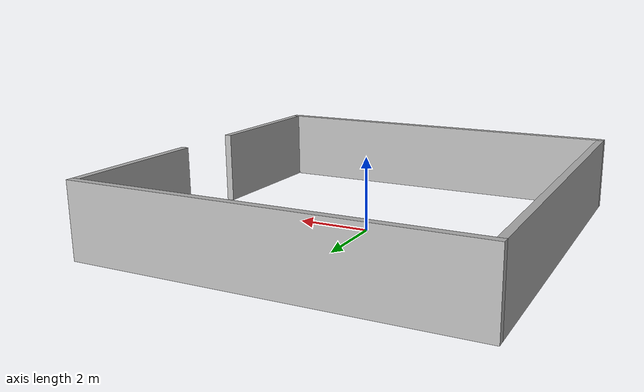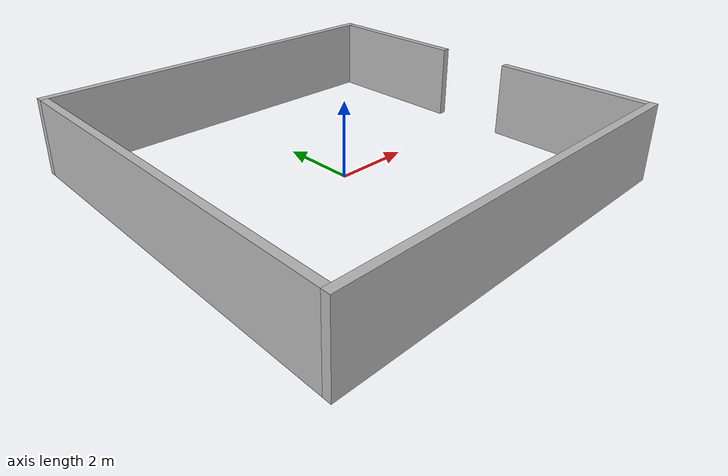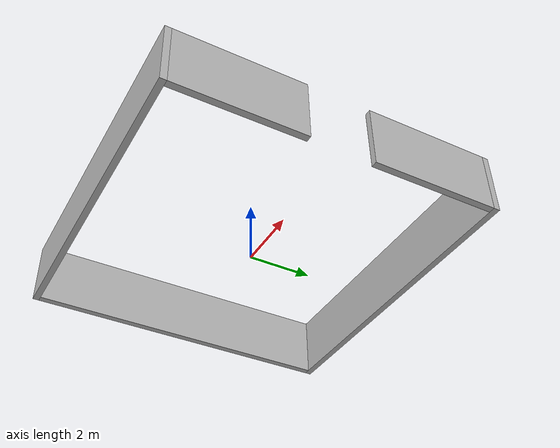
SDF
<?xml version="1.0"?>
<sdf version="1.6">

  <!-- Four walls to form the base section of the map. -->
  <model name="outer_walls">

    <static>true</static>

    <!-- Left Wall. -->
    <link name="wall_left">
      <pose>0 -5.1 1 0 0 0</pose>
      <must_be_base_link>true</must_be_base_link>
      <collision name="left_collision">
        <geometry>
          <box>
            <size>10.4 0.2 2</size>
          </box>
        </geometry>
      </collision>
      <visual name="left_visual">
        <geometry>
          <box>
            <size>10.4 0.2 2</size>
          </box>
        </geometry>
      </visual>
    </link>

    <!-- Right wall. -->
    <link name="wall_right">
      <pose>0 5.1 1 0 0 0</pose>
      <must_be_base_link>true</must_be_base_link>
      <collision name="right_collision">
        <geometry>
          <box>
            <size>10.4 0.2 2</size>
          </box>
        </geometry>
      </collision>
      <visual name="right_visual">
        <geometry>
          <box>
            <size>10.4 0.2 2</size>
          </box>
        </geometry>
      </visual>
    </link>

    <!-- Back wall. -->
    <link name="wall_back">
      <pose>-5.1 0 1 0 0 0</pose>
      <must_be_base_link>true</must_be_base_link>
      <collision name="back_collision">
        <geometry>
          <box>
            <size>0.2 10 2</size>
          </box>
        </geometry>
      </collision>
      <visual name="back_visual">
        <geometry>
          <box>
            <size>0.2 10 2</size>
          </box>
        </geometry>
      </visual>
    </link>

    <!-- Front wall, left half -->
    <link name="wall_front_left">
      <pose>5.1 0 1 0 0 0</pose>
      <must_be_base_link>true</must_be_base_link>
      <collision name="front_left_collision">
        <pose>0 -3 0 0 0 0</pose>
        <geometry>
          <box>
            <size>0.2 4 2</size>
          </box>
        </geometry>
      </collision>
      <visual name="front_left_visual">
        <pose>0 -3 0 0 0 0</pose>
        <geometry>
          <box>
            <size>0.2 4 2</size>
          </box>
        </geometry>
      </visual>
    </link>

    <!-- Front wall, right half -->
    <link name="wall_front_right">
      <pose>5.1 0 1 0 0 0</pose>
      <must_be_base_link>true</must_be_base_link>
      <collision name="front_right_collision">
        <pose>0 3 0 0 0 0</pose>
        <geometry>
          <box>
            <size>0.2 4 2</size>
          </box>
        </geometry>
      </collision>
      <visual name="front_right_visual">
        <pose>0 3 0 0 0 0</pose>
        <geometry>
          <box>
            <size>0.2 4 2</size>
          </box>
        </geometry>
      </visual>
    </link>
  </model>

</sdf>
